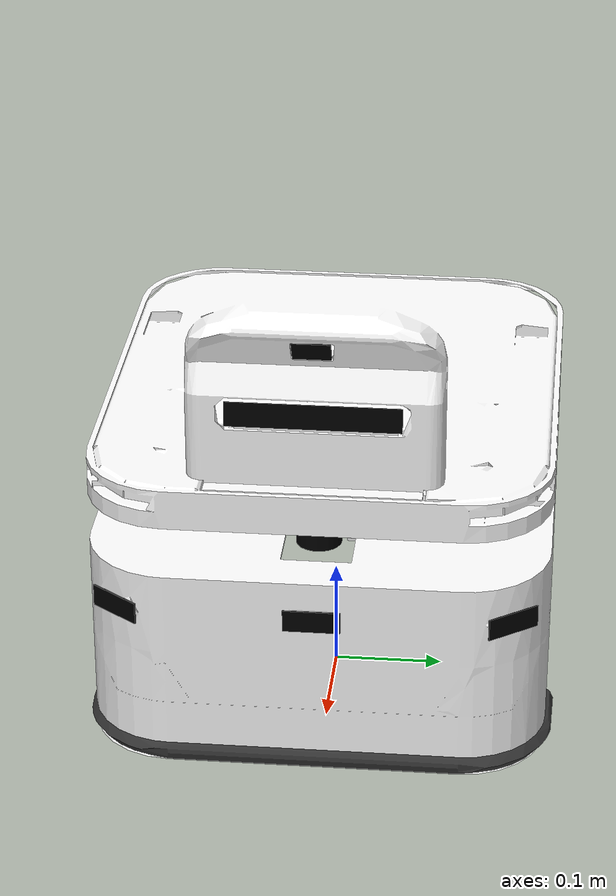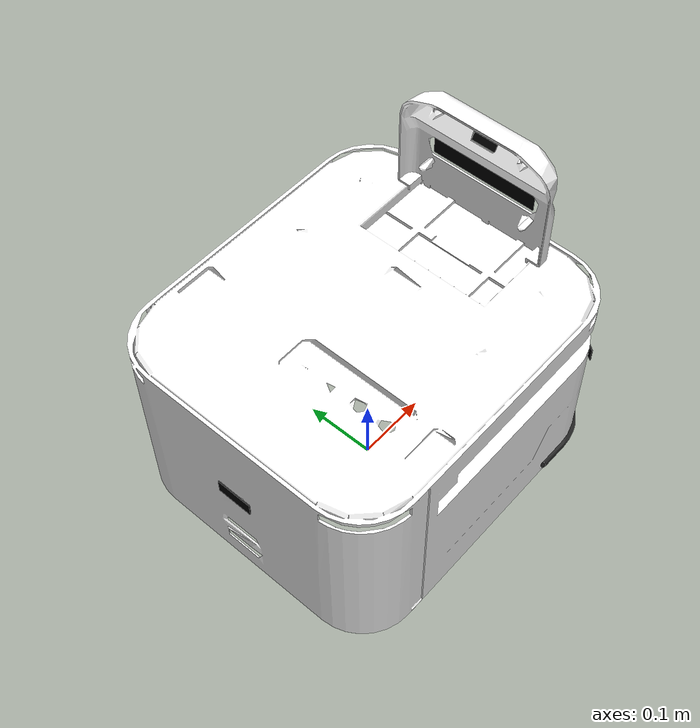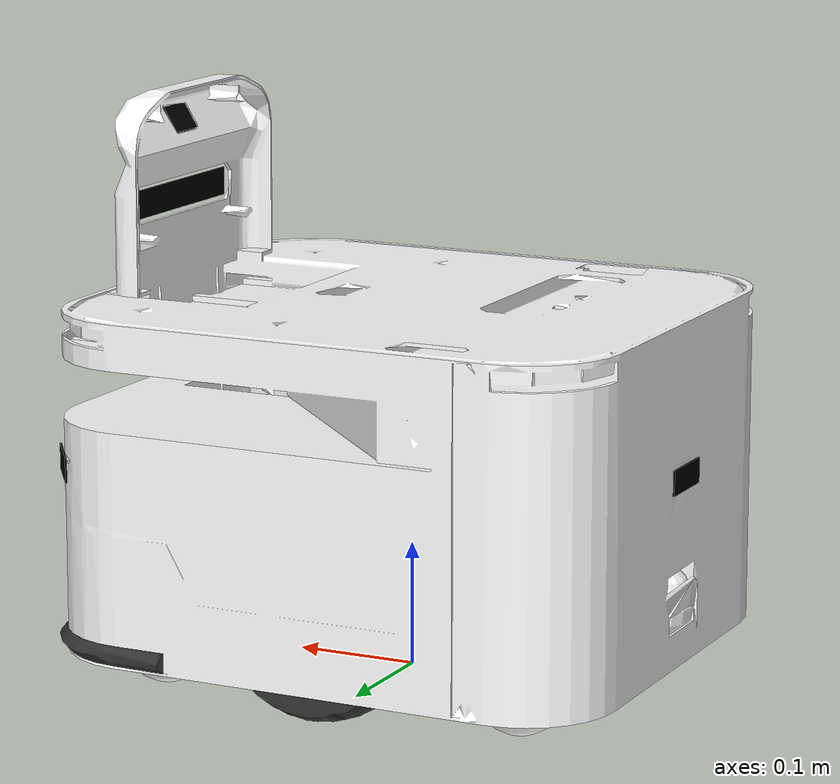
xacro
<?xml version="1.0" encoding="utf-8"?>
  <robot name="rbn100_chassis" xmlns:xacro="http://ros.org/wiki/xacro">
  <!-- 包含gazebo描述文件，在urdf文件开头也可以 -->
  <xacro:include filename="gazebo_common_property.xacro"/>
  <xacro:include filename="gazebo_plugin.xacro"/>

  <link name="base_footprint"/>
  <!-- base link -->
  <link
    name="base_link">
    <inertial>
      <origin
        xyz="0 0 0"
        rpy="0 -0.015 0" />
      <!-- 不规则车体在仿真中滑动，增大质量 -->
      <mass
        value="30" />
      <inertia
        ixx="0.066723"
        ixy="0.00023171"
        ixz="0.0011986"
        iyy="0.03832"
        iyz="-2.2372E-05"
        izz="0.080069" />
    </inertial>
    <visual>
      <origin
        xyz="0 0 0"
        rpy="0 0 0" />
      <geometry>
        <mesh
          filename="package://rbn100_description/meshes/base_link.dae" />
      </geometry>
      <material
        name="">
        <color
          rgba="1 1 1 1" />
      </material>
    </visual>
    <collision>
      <origin
        xyz="0 0 0"
        rpy="0 0 0" />
      <geometry>
        <mesh
          filename="package://rbn100_description/meshes/base_link.dae" />
      </geometry>
    </collision>
  </link>
  <joint
    name="fixed"
    type="fixed">
    <origin
      xyz="0 0 0.117"
      rpy="0 0 0" />
    <parent
      link="base_footprint" />
    <child
      link="base_link" />
    <axis
      xyz="0 0 0" />
  </joint>

  <!--
    wheel
   -->
   <xacro:macro name="wheel" params="pos flag_y">
    <link
      name="${pos}_wheel">
      <inertial>
        <origin
          xyz="-3.9818E-08 ${0.023375 * flag_y} -5.7134E-06"
          rpy="0 0 0" />
        <mass
          value="1.0829" />
        <inertia
          ixx="0.0019547"
          ixy="3.8126E-10"
          ixz="1.7547E-09"
          iyy="0.0033687"
          iyz="-3.6374E-07"
          izz="0.0019547" />
      </inertial>
      <visual>
        <origin
          xyz="0 0 0"
          rpy="0 0 0" />
        <geometry>
          <mesh
            filename="package://rbn100_description/meshes/${pos}_wheel.dae" />
        </geometry>
        <material
          name="">
          <color
            rgba="0.2 0.2 0.2 1" />
        </material>
      </visual>
      <collision>
        <origin
          xyz="0 0 0"
          rpy="0 0 0" />
        <geometry>
          <mesh
            filename="package://rbn100_description/meshes/${pos}_wheel.dae" />
        </geometry>
      </collision>
    </link>
    <joint
      name="${pos}_wheel_joint"
      type="continuous">
      <origin
        xyz="0 ${0.13755 * flag_y} -0.0325"
        rpy="0 0 0" />
      <parent
        link="base_link" />
      <child
        link="${pos}_wheel" />
      <axis
        xyz="0 1 0" />
    </joint>
  </xacro:macro>
  <!-- left wheel -->
  <xacro:wheel pos="left" flag_y="1"/>
  <!-- right wheel -->
  <xacro:wheel pos="right" flag_y="-1"/>

  <!-- tof -->
  <link
    name="tof">
    <inertial>
      <origin
        xyz="0 0 0"
        rpy="0 0 0" />
      <mass
        value="0.0001" />
      <inertia
        ixx="1.0E-08"
        ixy="0"
        ixz="0"
        iyy="1.0e-08"
        iyz="0"
        izz="1.0e-08" />
    </inertial>
    <visual>
      <origin
        xyz="0 0 0"
        rpy="0 0 0" />
      <geometry>
        <box size="0.003 0.033 0.023"/>
      </geometry>
      <material
        name="">
        <color
          rgba="0 0 0 1" />
      </material>
    </visual>
    <collision>
      <origin
        xyz="0 0 0"
        rpy="0 0 0" />
      <geometry>
        <box size="0.003 0.033 0.023"/>
      </geometry>
    </collision>
  </link>
  <joint
    name="tof_joint"
    type="fixed">
    <origin
      xyz="0.209 -0.0011166 0.3104"
      rpy="0 0.54803 0" />
    <parent
      link="base_link" />
    <child
      link="tof" />
    <axis
      xyz="0 0 0" />
  </joint>

  <!-- camera -->
  <link
    name="camera">
    <inertial>
      <origin
        xyz="0 0 0"
        rpy="0 0 0" />
      <mass
        value="0.001" />
      <inertia
        ixx="1.0e-06"
        ixy="0"
        ixz="0"
        iyy="1.0e-06"
        iyz="0"
        izz="1.0e-06" />
    </inertial>
    <visual>
      <origin
        xyz="0 0 0"
        rpy="0 0 0" />
      <geometry>
        <box size="0.0003 0.15 0.023"/>
      </geometry>
      <material
        name="">
        <color
          rgba="0 0 0 1" />
      </material>
    </visual>
    <collision>
      <origin
        xyz="0 0 0"
        rpy="0 0 0" />
      <geometry>
        <box size="0.0003 0.15 0.023"/>
      </geometry>
    </collision>
  </link>
  <joint
    name="camera_joint"
    type="fixed">
    <origin
      xyz="0.21 0 0.249"
      rpy="0 0 0" />
    <parent
      link="base_link" />
    <child
      link="camera" />
    <axis
      xyz="0 0 0" />
  </joint>

  <!-- imu -->
  <link name="imu"/>
  <joint
    name="imu_joint"
    type="fixed">
    <origin
      xyz="0.18936 0 0.249"
      rpy="0 0 0" />
    <parent
      link="base_link" />
    <child
      link="imu" />
    <axis
      xyz="0 0 0" />
  </joint>

  <!-- lidar -->
  <link
    name="lidar">
    <inertial>
      <origin
        xyz="0 0 0"
        rpy="0 0 0" />
      <mass
        value="0.0609959662435191" />
      <inertia
        ixx="3.389990057499999e-05"
        ixy="0"
        ixz="0"
        iyy="3.389990057499999e-05"
        iyz="0"
        izz="4.88e-05" />
    </inertial>
    <visual>
      <origin
        xyz="0 0 0"
        rpy="0 0 0" />
      <geometry>
        <cylinder radius="0.02" length="0.04323" />
      </geometry>
      <material
        name="">
        <color
          rgba="0 0 0 1" />
      </material>
    </visual>
    <collision>
      <origin
        xyz="0 0 0"
        rpy="0 0 0" />
      <geometry>
        <cylinder radius="0.01" length="0.04323" />
      </geometry>
    </collision>
  </link>
  <joint
    name="lidar_joint"
    type="fixed">
    <origin
      xyz="0.16001 0 0.124673"
      rpy="0 -0.0262 0" />
    <parent
      link="base_link" />
    <child
      link="lidar" />
    <axis
      xyz="0 0 0" />
  </joint>

  <!--
    sonar
   -->
   <xacro:macro name="sonar" params="pos">
    <link
      name="sonar_${pos}">
      <inertial>
        <origin
          xyz="0 0 0"
          rpy="0 0 0" />
        <mass
          value="0.001" />
        <inertia
          ixx="1.0e-06"
          ixy="0"
          ixz="0"
          iyy="1.0e-06"
          iyz="0"
          izz="1.0e-06" />
      </inertial>
      <visual>
        <origin
          xyz="0 0 0"
          rpy="0 0 0" />
        <geometry>
          <box size="0.0015 0.05 0.02"/>
        </geometry>
        <material
          name="">
          <color
            rgba="0 0 0 1" />
        </material>
      </visual>
      <collision>
        <origin
          xyz="0 0 0"
          rpy="0 0 0" />
        <geometry>
          <box size="0.0015 0.05 0.02"/>
        </geometry>
      </collision>
    </link>
   </xacro:macro>
   <!-- back -->
  <xacro:sonar pos="back"/>
  <joint
    name="back_sonar_joint"
    type="fixed">
    <origin
      xyz="-0.233 0 0.063"
      rpy="0 0 3.14" />
    <parent
      link="base_link" />
    <child
      link="sonar_back" />
    <axis
      xyz="0 0 0" />
  </joint>
  <!-- front -->
  <xacro:sonar pos="front"/>
  <joint
    name="front_sonar_joint"
    type="fixed">
    <origin
      xyz="0.2316 0 0.063"
      rpy="0 0 0" />
    <parent
      link="base_link" />
    <child
      link="sonar_front" />
    <axis
      xyz="0 0 0" />
  </joint>
  <!-- FL -->
  <xacro:sonar pos="FL"/>
  <joint
    name="sonar_FL_joint"
    type="fixed">
    <origin
      xyz="0.21648 0.17249 0.063"
      rpy="0 0 0.628" />
    <parent
      link="base_link" />
    <child
      link="sonar_FL" />
    <axis
      xyz="0 0 0" />
  </joint>
  <!-- FR -->
  <xacro:sonar pos="FR"/>
  <joint
    name="sonar_FR_joint"
    type="fixed">
    <origin
      xyz="0.21748 -0.17249 0.063"
      rpy="0 0 -0.628" />
    <parent
      link="base_link" />
    <child
      link="sonar_FR" />
    <axis
      xyz="0 0 0" />
  </joint>

  <!--
    cliff
   -->
  <xacro:macro name="cliff" params="pos flag_x flag_y" >
    <link
      name="cliff_${pos}">
      <inertial>
        <origin
          xyz="0 0 0"
          rpy="0 0 0" />
        <mass
          value="0.001" />
        <inertia
          ixx="1.0e-06"
          ixy="0"
          ixz="0"
          iyy="1.0e-06"
          iyz="0"
          izz="1.0e-06" />
      </inertial>
      <visual>
        <origin
          xyz="0 0 0"
          rpy="0 0 0" />
        <geometry>
          <box size="0.0025 0.01 0.02"/>
        </geometry>
        <material
          name="">
          <color
            rgba="1 1 1 1" />
        </material>
      </visual>
      <collision>
        <origin
          xyz="0 0 0"
          rpy="0 0 0" />
        <geometry>
          <box size="0.0025 0.01 0.02"/>
        </geometry>
      </collision>
    </link>
    <joint
      name="cliff_${pos}_joint"
      type="fixed">
      <origin
        xyz="${0.106 * flag_x} ${0.1865 * flag_y} -0.0609"
        rpy="0 1.570796 0" />
      <parent
        link="base_link" />
      <child
        link="cliff_${pos}" />
      <axis
        xyz="0 0 0" />
    </joint>
  </xacro:macro>
  <!-- FL -->
  <xacro:cliff pos="FL" flag_x="1" flag_y="1"/>
  <!-- FR -->
  <xacro:cliff pos="FR" flag_x="1" flag_y="-1"/>
  <!-- BL -->
  <xacro:cliff pos="BL" flag_x="-1" flag_y="1"/>
  <!-- BR -->
  <xacro:cliff pos="BR" flag_x="-1" flag_y="-1"/>

  <!-- 两个结构的转动惯量相对位置不均匀，导致vertical自己缓慢转动，没有转动惯量部件不会转动 -->
  <!-- 理论上，正确的惯性矩阵加上gazebo摩擦力等的设置，就可以很稳定 -->
  <!--
    universal
   -->
   <!-- actual universal-->
  <!-- sphere universal -->
  <xacro:macro name="universal" params="pos flag_x flag_y" >
    <link
      name="universal_${pos}">
      <inertial>
        <origin
          xyz="0 0 0"
          rpy="0 0 0" />
        <mass
          value="0.0095091" />
        <inertia
          ixx="5.34886875e-06"
          ixy="0"
          ixz="0"
          iyy="5.34886875e-06"
          iyz="0"
          izz="5.34886875e-06" />
      </inertial>
      <visual>
        <origin
          xyz="0 0 0"
          rpy="0 0 0" />
        <geometry>
          <sphere radius="0.0375" />
        </geometry>
        <material
          name="">
          <color
            rgba="1 1 1 1" />
        </material>
      </visual>
      <collision>
        <origin
          xyz="0 0 0"
          rpy="0 0 0" />
        <geometry>
          <sphere radius="0.0375" />
        </geometry>
      </collision>
    </link>
    <joint
      name="universal_${pos}_joint"
      type="continuous">
      <origin
        xyz="${0.15248 * flag_x} ${-0.125 * flag_y} -0.0795"
        rpy="0 0 0" />
      <parent
        link="base_link" />
      <child
        link="universal_${pos}" />
      <axis
        xyz="0 1 1" />
    </joint>
  </xacro:macro>
  <xacro:universal pos="FR" flag_x="1" flag_y="1"/>
  <xacro:universal pos="FL" flag_x="1" flag_y="-1"/>
  <xacro:universal pos="BR" flag_x="-1" flag_y="1"/>
  <xacro:universal pos="BL" flag_x="-1" flag_y="-1"/>

  <!-- front caster -->
  <link
    name="front_caster">
    <inertial>
      <origin
        xyz="-2.77555756156289E-17 -5.80442675708945E-16 0"
        rpy="0 0 0" />
      <mass
        value="0.0506581815391354" />
      <inertia
        ixx="1.3188E-05"
        ixy="2.1816E-22"
        ixz="1.5232E-36"
        iyy="1.0765E-05"
        iyz="-1.6921E-20"
        izz="1.3188E-05" />
    </inertial>
    <visual>
      <origin
        xyz="0 0 0"
        rpy="0 0 0" />
      <geometry>
        <mesh
          filename="package://rbn100_description/meshes/front_caster.dae" />
      </geometry>
      <material
        name="">
        <color
          rgba="1 1 1 1" />
      </material>
    </visual>
    <collision>
      <origin
        xyz="0 0 0"
        rpy="0 0 0" />
      <geometry>
        <mesh
          filename="package://rbn100_description/meshes/front_caster.dae" />
      </geometry>
    </collision>
  </link>
  <joint
    name="front_caster_joint"
    type="continuous">
    <origin
      xyz="0.16 0 -0.083"
      rpy="0 0 0" />
    <parent
      link="base_link" />
    <child
      link="front_caster" />
    <axis
      xyz="0 1 0" />
  </joint>

  <!-- back caster -->
  <link
    name="back_caster">
    <inertial>
      <origin
        xyz="2.7756E-17 -5.8981E-16 0"
        rpy="0 0 0" />
      <mass
        value="0.0056549" />
      <inertia
        ixx="2.9759E-07"
        ixy="-7.1138E-24"
        ixz="-4.9678E-38"
        iyy="4.5946E-07"
        iyz="1.1303E-21"
        izz="2.9759E-07" />
    </inertial>
    <visual>
      <origin
        xyz="0 0 0"
        rpy="0 0 0" />
      <geometry>
        <mesh
          filename="package://rbn100_description/meshes/back_caster.dae" />
      </geometry>
      <material
        name="">
        <color
          rgba="1 1 1 1" />
      </material>
    </visual>
    <collision>
      <origin
        xyz="0 0 0"
        rpy="0 0 0" />
      <geometry>
        <mesh
          filename="package://rbn100_description/meshes/back_caster.dae" />
      </geometry>
    </collision>
  </link>
  <joint
    name="back_caster_joint"
    type="continuous">
    <origin
      xyz="-0.193 0 -0.0845"
      rpy="0 0 0" />
    <parent
      link="base_link" />
    <child
      link="back_caster" />
    <axis
      xyz="0 1 0" />
  </joint>

  <!-- bumper -->
  <link
    name="bumper">
    <inertial>
      <origin
        xyz="0.094808 2.5935E-08 3.9562E-09"
        rpy="0 0 0" />
      <mass
        value="0.046523" />
      <inertia
        ixx="0.0010114"
        ixy="1.0666E-10"
        ixz="1.1467E-11"
        iyy="6.3521E-05"
        iyz="-4.0455E-11"
        izz="0.0010733" />
    </inertial>
    <visual>
      <origin
        xyz="0 0 0"
        rpy="0 0 0" />
      <geometry>
        <mesh
          filename="package://rbn100_description/meshes/bumper.dae" />
      </geometry>
      <material
        name="">
        <color
          rgba="0.2 0.2 0.2 1" />
      </material>
    </visual>
    <collision name="bumper">
      <origin
        xyz="0 0 0"
        rpy="0 0 0" />
      <geometry>
        <mesh
          filename="package://rbn100_description/meshes/bumper.dae" />
      </geometry>
    </collision>
  </link>
  <joint
    name="bumper_joint"
    type="fixed">
    <origin
      xyz="0.1115 0.001 -0.077"
      rpy="0 0 0" />
    <parent
      link="base_link" />
    <child
      link="bumper" />
    <axis
      xyz="0 0 0" />
  </joint>
</robot>
